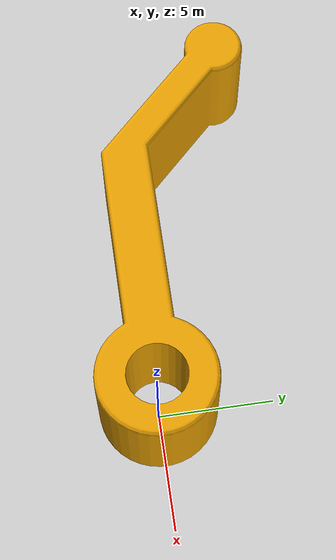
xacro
<?xml version="1.0"?>
<robot xmlns:xacro="http://www.ros.org/wiki/xacro" name="Clawbot">
  <link name="claw">
    <visual>
      <geometry>
        <mesh filename="package://learning_robot_control/meshes/gripperV2.dae"/>
      </geometry>
      <origin rpy="1.5707 0 0" xyz="0 0 0"/>
    </visual>

    <collision>
      <geometry>
        <mesh filename="package://learning_robot_control/meshes/gripperV2.dae" />
      </geometry>
      <origin rpy="1.5707 0 0" xyz="0 0 0"/>
    </collision>

    <inertial>
      <mass value="10"/>
      <inertia
        ixx=".1"
        ixy="0"
        ixz="0"
        iyy=".1"
        iyz="0"
        izz=".1"/>
    </inertial>
  </link>

    <link name="world"/>

    <joint name="clawToWorld" type="fixed">
      <parent link="world"/>
      <child link="claw"/>
      <origin xyz="0 0 1"/>
    </joint>

</robot>
